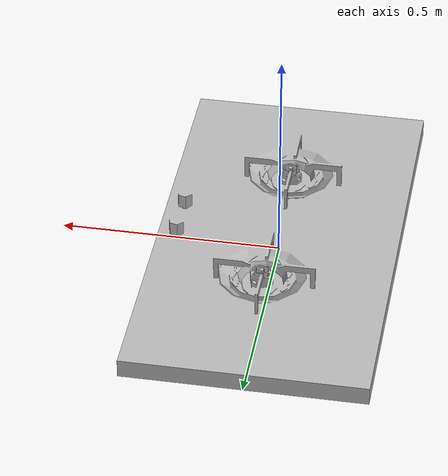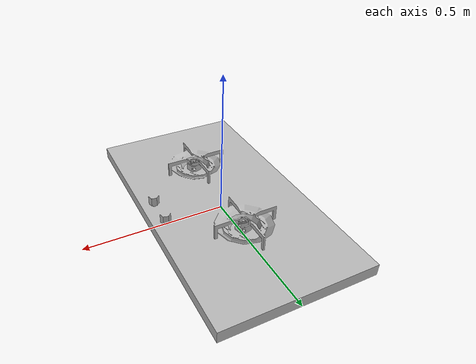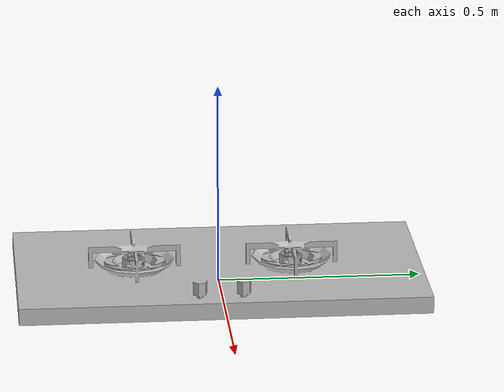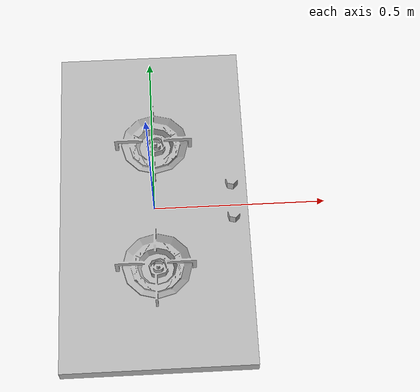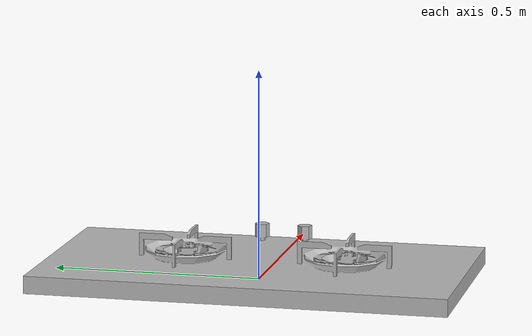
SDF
<?xml version="1.0" ?>
<sdf version="1.8">
  <model name="aws_robomaker_residential_CookingBench_01">
    <link name="link">
      <inertial>
        <mass>1</mass>
        <inertia>
          <ixx>  8.4704931274e-02 </ixx>
          <ixy> -3.3582970635e-14 </ixy>
          <ixz> -1.8657205909e-15 </ixz>
          <iyy>  1.0870613560e-01 </iyy>
          <iyz> -8.9711047690e-09 </iyz>
          <izz>  2.5599100723e-02 </izz>
        </inertia>
      </inertial>
      <collision name="collision">
        <geometry>
          <mesh>
            <uri>model://aws_robomaker_residential_CookingBench_01/meshes/aws_CookingBench_01_collision.DAE</uri>
            <scale>1 1 1</scale>
          </mesh>
        </geometry>
      </collision>
      <visual name="visual">
	      <geometry>
          <mesh>
            <uri>model://aws_robomaker_residential_CookingBench_01/meshes/aws_CookingBench_01_visual.DAE</uri>
          </mesh>
        </geometry>
        <meta> <layer> 1 </layer></meta>
      </visual>
    </link>
  </model>
</sdf>
